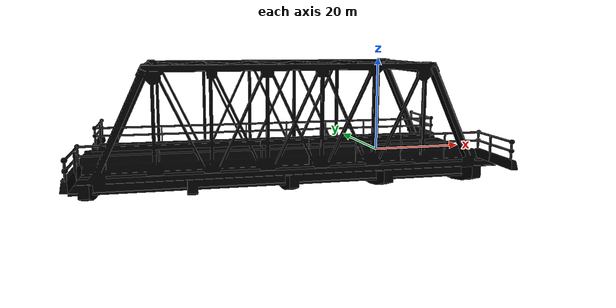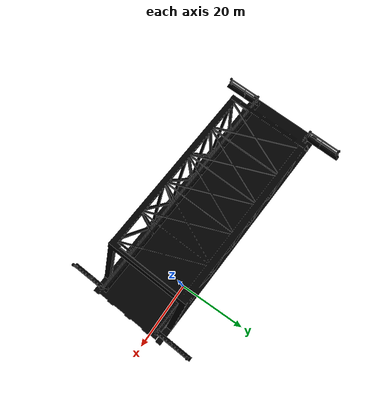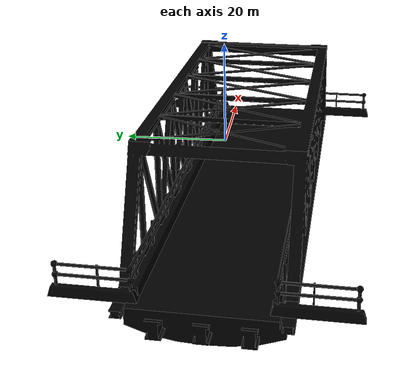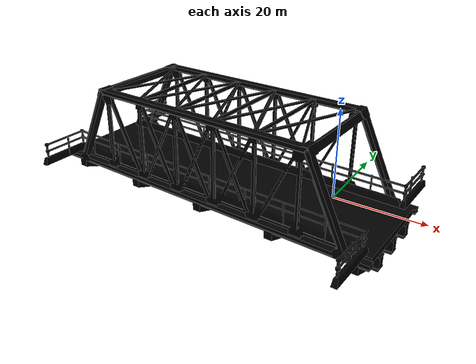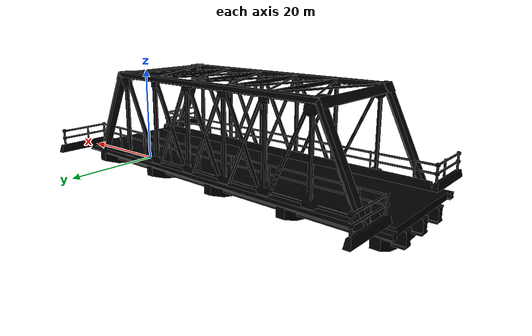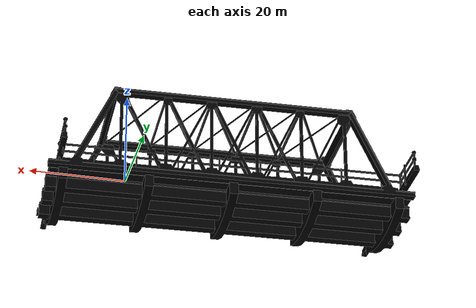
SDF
<?xml version='1.0'?>
<sdf version='1.7'>
  <model name='truss_bridge2'>
    <link name='link'>
      <self_collide>0</self_collide>
      <enable_wind>0</enable_wind>
      <kinematic>0</kinematic>
      <pose>-22.8302 -6.17652 0 0 0 -1.61831</pose>
      <gravity>1</gravity>
      <inertial>
        <mass>1</mass>
        <pose>0 0 0 0 -0 0</pose>
        <inertia>
          <ixx>1</ixx>
          <ixy>0</ixy>
          <ixz>0</ixz>
          <iyy>1</iyy>
          <iyz>0</iyz>
          <izz>1</izz>
        </inertia>
      </inertial>
      <visual name='visual'>
        <geometry>
          <mesh>
            <uri>model://truss_bridge2/meshes/truss_bridge2.dae</uri>
            <scale>5 5 5</scale>
          </mesh>
        </geometry>
        <material>
          <shader type='pixel'>
            <normal_map>__default__</normal_map>
          </shader>
          <script>
            <name>ModelPreview_1::link::visual_MATERIAL_</name>
          </script>
          <ambient>0 0 0 1</ambient>
          <diffuse>0 0 0 1</diffuse>
          <specular>0 0 0 1</specular>
          <emissive>0 0 0 1</emissive>
        </material>
        <pose>0 0 0 0 -0 0</pose>
        <transparency>0</transparency>
        <cast_shadows>1</cast_shadows>
      </visual>
      <collision name='collision'>
        <laser_retro>0</laser_retro>
        <max_contacts>10</max_contacts>
        <pose>0 0 0 0 -0 0</pose>
        <geometry>
          <mesh>
            <uri>/home/wookjin/바탕화면/catkin_ws/src/multiple_quadrotors/src/usar_gazebo/models/truss_bridge2/meshes/truss_bridge2.dae</uri>
            <scale>5 5 5</scale>
          </mesh>
        </geometry>
        <surface>
          <friction>
            <ode>
              <mu>1</mu>
              <mu2>1</mu2>
              <fdir1>0 0 0</fdir1>
              <slip1>0</slip1>
              <slip2>0</slip2>
            </ode>
            <torsional>
              <coefficient>1</coefficient>
              <patch_radius>0</patch_radius>
              <surface_radius>0</surface_radius>
              <use_patch_radius>1</use_patch_radius>
              <ode>
                <slip>0</slip>
              </ode>
            </torsional>
          </friction>
          <bounce>
            <restitution_coefficient>0</restitution_coefficient>
            <threshold>1e+06</threshold>
          </bounce>
          <contact>
            <collide_without_contact>0</collide_without_contact>
            <collide_without_contact_bitmask>1</collide_without_contact_bitmask>
            <collide_bitmask>1</collide_bitmask>
            <ode>
              <soft_cfm>0</soft_cfm>
              <soft_erp>0.2</soft_erp>
              <kp>1e+13</kp>
              <kd>1</kd>
              <max_vel>0.01</max_vel>
              <min_depth>0</min_depth>
            </ode>
            <bullet>
              <split_impulse>1</split_impulse>
              <split_impulse_penetration_threshold>-0.01</split_impulse_penetration_threshold>
              <soft_cfm>0</soft_cfm>
              <soft_erp>0.2</soft_erp>
              <kp>1e+13</kp>
              <kd>1</kd>
            </bullet>
          </contact>
        </surface>
      </collision>
    </link>
    <static>1</static>
    <allow_auto_disable>1</allow_auto_disable>
  </model>
</sdf>
